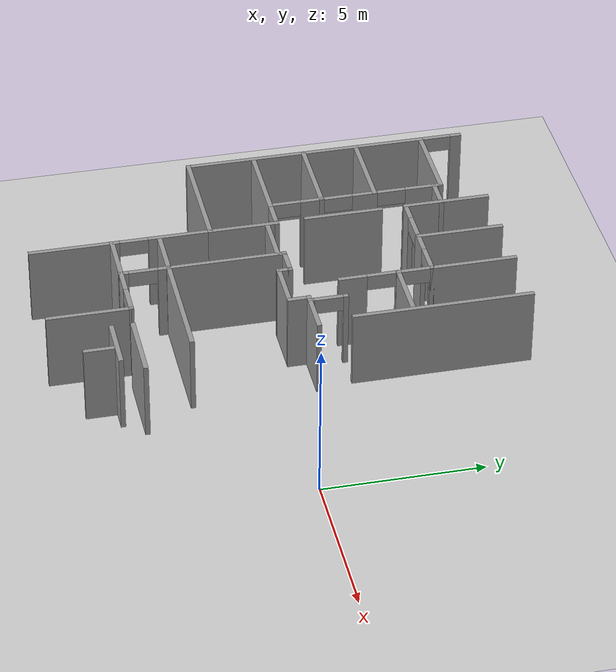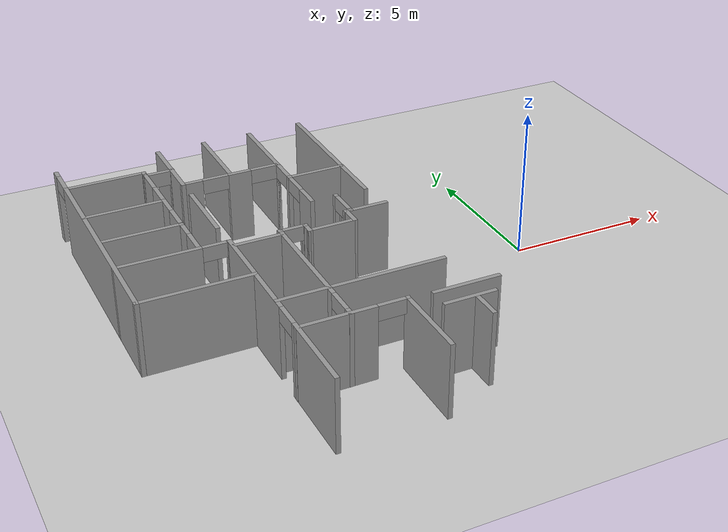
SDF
<sdf version="1.6">
 <world name="default">
  <model name="ground_plane">
   <static>1</static>
   <link name="link">
    <collision name="collision">
     <geometry><plane><normal>0 0 1</normal><size>100 100</size></plane></geometry>
     <surface><friction><ode><mu>100</mu><mu2>50</mu2></ode></friction></surface>
    </collision>
    <visual name="visual">
     <cast_shadows>0</cast_shadows>
     <geometry><plane><normal>0 0 1</normal><size>100 100</size></plane></geometry>
     <material>
      <script><uri>file://media/materials/scripts/gazebo.material</uri><name>Gazebo/Grey</name></script>
     </material>
    </visual>
   </link>
  </model>
  <model name="deh_f1">
   <pose>0.520969 0.357811 0 0 -0 0</pose>
   <link name="Wall_101">
    <collision name="Wall_101_Collision">
     <geometry><box><size>5.6204 0.15 2.5</size></box></geometry>
     <pose>0 0 1.25 0 -0 0</pose>
    </collision>
    <visual name="Wall_101_Visual">
     <pose>0 0 1.25 0 -0 0</pose>
     <geometry><box><size>5.6204 0.15 2.5</size></box></geometry>
     <material>
      <script><uri>file://media/materials/scripts/gazebo.material</uri><name>Gazebo/Grey</name></script>
      <ambient>1 1 1 1</ambient>
     </material>
    </visual>
    <pose>-5.26917 4.49123 0 0 -0 1.57128</pose>
   </link>
   <link name="Wall_103">
    <collision name="Wall_103_Collision">
     <geometry><box><size>2 0.15 2.5</size></box></geometry>
     <pose>0 0 1.25 0 -0 0</pose>
    </collision>
    <visual name="Wall_103_Visual">
     <pose>0 0 1.25 0 -0 0</pose>
     <geometry><box><size>2 0.15 2.5</size></box></geometry>
     <material>
      <script><uri>file://media/materials/scripts/gazebo.material</uri><name>Gazebo/Grey</name></script>
      <ambient>1 1 1 1</ambient>
     </material>
    </visual>
    <pose>-6.238 3.5569 0 0 -0 0</pose>
   </link>
   <link name="Wall_105">
    <pose>-10.9717 5.7489 0 0 -0 3.14159</pose>
    <visual name="Wall_105_Visual_0">
     <pose>-0.453629 0 1.25 0 -0 0</pose>
     <geometry><box><size>0.165238 0.15 2.5</size></box></geometry>
     <material>
      <script><uri>file://media/materials/scripts/gazebo.material</uri><name>Gazebo/Grey</name></script>
      <ambient>1 1 1 1</ambient>
     </material>
    </visual>
    <collision name="Wall_105_Collision_0">
     <geometry><box><size>0.165238 0.15 2.5</size></box></geometry>
     <pose>-0.453629 0 1.25 0 -0 0</pose>
    </collision>
    <visual name="Wall_105_Visual_1">
     <pose>0.457005 0 1.25 0 -0 0</pose>
     <geometry><box><size>0.158486 0.15 2.5</size></box></geometry>
     <material>
      <script><uri>file://media/materials/scripts/gazebo.material</uri><name>Gazebo/Grey</name></script>
      <ambient>1 1 1 1</ambient>
     </material>
    </visual>
    <collision name="Wall_105_Collision_1">
     <geometry><box><size>0.158486 0.15 2.5</size></box></geometry>
     <pose>0.457005 0 1.25 0 -0 0</pose>
    </collision>
    <visual name="Wall_105_Visual_2">
     <pose>0.003376 0 2.25 0 -0 0</pose>
     <geometry><box><size>0.748771 0.15 0.5</size></box></geometry>
     <material>
      <script><uri>file://media/materials/scripts/gazebo.material</uri><name>Gazebo/Grey</name></script>
      <ambient>1 1 1 1</ambient>
     </material>
    </visual>
    <collision name="Wall_105_Collision_2">
     <geometry><box><size>0.748771 0.15 0.5</size></box></geometry>
     <pose>0.003376 0 2.25 0 -0 0</pose>
    </collision>
   </link>
   <link name="Wall_19">
    <pose>-8.74893 -4.7004 0 0 -0 0.000997</pose>
    <visual name="Wall_19_Visual_0">
     <pose>-0.52084 0 1.25 0 -0 0</pose>
     <geometry><box><size>2.52103 0.15 2.5</size></box></geometry>
     <material>
      <script><uri>file://media/materials/scripts/gazebo.material</uri><name>Gazebo/Grey</name></script>
      <ambient>1 1 1 1</ambient>
     </material>
    </visual>
    <collision name="Wall_19_Collision_0">
     <geometry><box><size>2.52103 0.15 2.5</size></box></geometry>
     <pose>-0.52084 0 1.25 0 -0 0</pose>
    </collision>
    <visual name="Wall_19_Visual_1">
     <pose>1.71051 0 1.25 0 -0 0</pose>
     <geometry><box><size>0.141681 0.15 2.5</size></box></geometry>
     <material>
      <script><uri>file://media/materials/scripts/gazebo.material</uri><name>Gazebo/Grey</name></script>
      <ambient>1 1 1 1</ambient>
     </material>
    </visual>
    <collision name="Wall_19_Collision_1">
     <geometry><box><size>0.141681 0.15 2.5</size></box></geometry>
     <pose>1.71051 0 1.25 0 -0 0</pose>
    </collision>
    <visual name="Wall_19_Visual_2">
     <pose>1.18967 0 2.25 0 -0 0</pose>
     <geometry><box><size>0.9 0.15 0.5</size></box></geometry>
     <material>
      <script><uri>file://media/materials/scripts/gazebo.material</uri><name>Gazebo/Grey</name></script>
      <ambient>1 1 1 1</ambient>
     </material>
    </visual>
    <collision name="Wall_19_Collision_2">
     <geometry><box><size>0.9 0.15 0.5</size></box></geometry>
     <pose>1.18967 0 2.25 0 -0 0</pose>
    </collision>
   </link>
   <link name="Wall_2">
    <pose>-10.452 -4.42647 0 0 -0 1.5708</pose>
    <visual name="Wall_2_Visual_0">
     <pose>-1.46188 0 1.25 0 -0 0</pose>
     <geometry><box><size>2.82623 0.15 2.5</size></box></geometry>
     <material>
      <script><uri>file://media/materials/scripts/gazebo.material</uri><name>Gazebo/Grey</name></script>
      <ambient>1 1 1 1</ambient>
     </material>
    </visual>
    <collision name="Wall_2_Collision_0">
     <geometry><box><size>2.82623 0.15 2.5</size></box></geometry>
     <pose>-1.46188 0 1.25 0 -0 0</pose>
    </collision>
    <visual name="Wall_2_Visual_1">
     <pose>1.86312 0 1.25 0 -0 0</pose>
     <geometry><box><size>2.02377 0.15 2.5</size></box></geometry>
     <material>
      <script><uri>file://media/materials/scripts/gazebo.material</uri><name>Gazebo/Grey</name></script>
      <ambient>1 1 1 1</ambient>
     </material>
    </visual>
    <collision name="Wall_2_Collision_1">
     <geometry><box><size>2.02377 0.15 2.5</size></box></geometry>
     <pose>1.86312 0 1.25 0 -0 0</pose>
    </collision>
    <visual name="Wall_2_Visual_2">
     <pose>0.401232 0 2.25 0 -0 0</pose>
     <geometry><box><size>0.9 0.15 0.5</size></box></geometry>
     <material>
      <script><uri>file://media/materials/scripts/gazebo.material</uri><name>Gazebo/Grey</name></script>
      <ambient>1 1 1 1</ambient>
     </material>
    </visual>
    <collision name="Wall_2_Collision_2">
     <geometry><box><size>0.9 0.15 0.5</size></box></geometry>
     <pose>0.401232 0 2.25 0 -0 0</pose>
    </collision>
   </link>
   <link name="Wall_20">
    <collision name="Wall_20_Collision">
     <geometry><box><size>2.6716 0.15 2.5</size></box></geometry>
     <pose>0 0 1.25 0 -0 0</pose>
    </collision>
    <visual name="Wall_20_Visual">
     <pose>0 0 1.25 0 -0 0</pose>
     <geometry><box><size>2.6716 0.15 2.5</size></box></geometry>
     <material>
      <script><uri>file://media/materials/scripts/gazebo.material</uri><name>Gazebo/Grey</name></script>
      <ambient>1 1 1 1</ambient>
     </material>
    </visual>
    <pose>-7.04302 -5.9595 0 0 0 -1.57115</pose>
   </link>
   <link name="Wall_22">
    <collision name="Wall_22_Collision">
     <geometry><box><size>5.5 0.15 2.5</size></box></geometry>
     <pose>0 0 1.25 0 -0 0</pose>
    </collision>
    <visual name="Wall_22_Visual">
     <pose>0 0 1.25 0 -0 0</pose>
     <geometry><box><size>5.5 0.15 2.5</size></box></geometry>
     <material>
      <script><uri>file://media/materials/scripts/gazebo.material</uri><name>Gazebo/Grey</name></script>
      <ambient>1 1 1 1</ambient>
     </material>
    </visual>
    <pose>-7.76729 -3.22957 0 0 -0 0</pose>
   </link>
   <link name="Wall_26">
    <pose>-8.83797 -3.96974 0 0 -0 1.5708</pose>
    <visual name="Wall_26_Visual_0">
     <pose>-0.6575 0 1.25 0 -0 0</pose>
     <geometry><box><size>0.305 0.15 2.5</size></box></geometry>
     <material>
      <script><uri>file://media/materials/scripts/gazebo.material</uri><name>Gazebo/Grey</name></script>
      <ambient>1 1 1 1</ambient>
     </material>
    </visual>
    <collision name="Wall_26_Collision_0">
     <geometry><box><size>0.305 0.15 2.5</size></box></geometry>
     <pose>-0.6575 0 1.25 0 -0 0</pose>
    </collision>
    <visual name="Wall_26_Visual_1">
     <pose>0.6025 0 1.25 0 -0 0</pose>
     <geometry><box><size>0.415 0.15 2.5</size></box></geometry>
     <material>
      <script><uri>file://media/materials/scripts/gazebo.material</uri><name>Gazebo/Grey</name></script>
      <ambient>1 1 1 1</ambient>
     </material>
    </visual>
    <collision name="Wall_26_Collision_1">
     <geometry><box><size>0.415 0.15 2.5</size></box></geometry>
     <pose>0.6025 0 1.25 0 -0 0</pose>
    </collision>
    <visual name="Wall_26_Visual_2">
     <pose>-0.055 0 2.25 0 -0 0</pose>
     <geometry><box><size>0.9 0.15 0.5</size></box></geometry>
     <material>
      <script><uri>file://media/materials/scripts/gazebo.material</uri><name>Gazebo/Grey</name></script>
      <ambient>1 1 1 1</ambient>
     </material>
    </visual>
    <collision name="Wall_26_Collision_2">
     <geometry><box><size>0.9 0.15 0.5</size></box></geometry>
     <pose>-0.055 0 2.25 0 -0 0</pose>
    </collision>
   </link>
   <link name="Wall_28">
    <collision name="Wall_28_Collision">
     <geometry><box><size>2.25 0.15 2.5</size></box></geometry>
     <pose>0 0 1.25 0 -0 0</pose>
    </collision>
    <visual name="Wall_28_Visual">
     <pose>0 0 1.25 0 -0 0</pose>
     <geometry><box><size>2.25 0.15 2.5</size></box></geometry>
     <material>
      <script><uri>file://media/materials/scripts/gazebo.material</uri><name>Gazebo/Grey</name></script>
      <ambient>1 1 1 1</ambient>
     </material>
    </visual>
    <pose>-5.18797 -4.78474 0 0 -0 0</pose>
   </link>
   <link name="Wall_3">
    <collision name="Wall_3_Collision">
     <geometry><box><size>3.75 0.15 2.5</size></box></geometry>
     <pose>0 0 1.25 0 -0 0</pose>
    </collision>
    <visual name="Wall_3_Visual">
     <pose>0 0 1.25 0 -0 0</pose>
     <geometry><box><size>3.75 0.15 2.5</size></box></geometry>
     <material>
      <script><uri>file://media/materials/scripts/gazebo.material</uri><name>Gazebo/Grey</name></script>
      <ambient>1 1 1 1</ambient>
     </material>
    </visual>
    <pose>-12.252 -1.62647 0 0 -0 3.14159</pose>
   </link>
   <link name="Wall_34">
    <collision name="Wall_34_Collision">
     <geometry><box><size>1.75 0.15 2.5</size></box></geometry>
     <pose>0 0 1.25 0 -0 0</pose>
    </collision>
    <visual name="Wall_34_Visual">
     <pose>0 0 1.25 0 -0 0</pose>
     <geometry><box><size>1.75 0.15 2.5</size></box></geometry>
     <material>
      <script><uri>file://media/materials/scripts/gazebo.material</uri><name>Gazebo/Grey</name></script>
      <ambient>1 1 1 1</ambient>
     </material>
    </visual>
    <pose>-5.43797 -5.43474 0 0 -0 3.14159</pose>
   </link>
   <link name="Wall_37">
    <collision name="Wall_37_Collision">
     <geometry><box><size>1 0.15 2.5</size></box></geometry>
     <pose>0 0 1.25 0 -0 0</pose>
    </collision>
    <visual name="Wall_37_Visual">
     <pose>0 0 1.25 0 -0 0</pose>
     <geometry><box><size>1 0.15 2.5</size></box></geometry>
     <material>
      <script><uri>file://media/materials/scripts/gazebo.material</uri><name>Gazebo/Grey</name></script>
      <ambient>1 1 1 1</ambient>
     </material>
    </visual>
    <pose>-5.23797 -5.95974 0 0 -0 1.5708</pose>
   </link>
   <link name="Wall_4">
    <pose>-14.052 2.79853 0 0 -0 1.5708</pose>
    <visual name="Wall_4_Visual_0">
     <pose>-0.630476 0 1.25 0 -0 0</pose>
     <geometry><box><size>7.73905 0.15 2.5</size></box></geometry>
     <material>
      <script><uri>file://media/materials/scripts/gazebo.material</uri><name>Gazebo/Grey</name></script>
      <ambient>1 1 1 1</ambient>
     </material>
    </visual>
    <collision name="Wall_4_Collision_0">
     <geometry><box><size>7.73905 0.15 2.5</size></box></geometry>
     <pose>-0.630476 0 1.25 0 -0 0</pose>
    </collision>
    <visual name="Wall_4_Visual_1">
     <pose>4.31952 0 1.25 0 -0 0</pose>
     <geometry><box><size>0.360951 0.15 2.5</size></box></geometry>
     <material>
      <script><uri>file://media/materials/scripts/gazebo.material</uri><name>Gazebo/Grey</name></script>
      <ambient>1 1 1 1</ambient>
     </material>
    </visual>
    <collision name="Wall_4_Collision_1">
     <geometry><box><size>0.360951 0.15 2.5</size></box></geometry>
     <pose>4.31952 0 1.25 0 -0 0</pose>
    </collision>
    <visual name="Wall_4_Visual_2">
     <pose>3.68905 0 2.25 0 -0 0</pose>
     <geometry><box><size>0.9 0.15 0.5</size></box></geometry>
     <material>
      <script><uri>file://media/materials/scripts/gazebo.material</uri><name>Gazebo/Grey</name></script>
      <ambient>1 1 1 1</ambient>
     </material>
    </visual>
    <collision name="Wall_4_Collision_2">
     <geometry><box><size>0.9 0.15 0.5</size></box></geometry>
     <pose>3.68905 0 2.25 0 -0 0</pose>
    </collision>
   </link>
   <link name="Wall_40">
    <collision name="Wall_40_Collision">
     <geometry><box><size>1.53968 0.15 2.5</size></box></geometry>
     <pose>0 0 1.25 0 -0 0</pose>
    </collision>
    <visual name="Wall_40_Visual">
     <pose>0 0 1.25 0 -0 0</pose>
     <geometry><box><size>1.53968 0.15 2.5</size></box></geometry>
     <material>
      <script><uri>file://media/materials/scripts/gazebo.material</uri><name>Gazebo/Grey</name></script>
      <ambient>1 1 1 1</ambient>
     </material>
    </visual>
    <pose>-5.78712 0.618344 0 0 0 -3.1386</pose>
   </link>
   <link name="Wall_44">
    <collision name="Wall_44_Collision">
     <geometry><box><size>3.75 0.15 2.5</size></box></geometry>
     <pose>0 0 1.25 0 -0 0</pose>
    </collision>
    <visual name="Wall_44_Visual">
     <pose>0 0 1.25 0 -0 0</pose>
     <geometry><box><size>3.75 0.15 2.5</size></box></geometry>
     <material>
      <script><uri>file://media/materials/scripts/gazebo.material</uri><name>Gazebo/Grey</name></script>
      <ambient>1 1 1 1</ambient>
     </material>
    </visual>
    <pose>-8.83797 -1.43474 0 0 -0 1.5708</pose>
   </link>
   <link name="Wall_46">
    <collision name="Wall_46_Collision">
     <geometry><box><size>2.25 0.15 2.5</size></box></geometry>
     <pose>0 0 1.25 0 -0 0</pose>
    </collision>
    <visual name="Wall_46_Visual">
     <pose>0 0 1.25 0 -0 0</pose>
     <geometry><box><size>2.25 0.15 2.5</size></box></geometry>
     <material>
      <script><uri>file://media/materials/scripts/gazebo.material</uri><name>Gazebo/Grey</name></script>
      <ambient>1 1 1 1</ambient>
     </material>
    </visual>
    <pose>-10.452 -0.576473 0 0 -0 1.5708</pose>
   </link>
   <link name="Wall_48">
    <collision name="Wall_48_Collision">
     <geometry><box><size>1.73003 0.15 2.5</size></box></geometry>
     <pose>0 0 1.25 0 -0 0</pose>
    </collision>
    <visual name="Wall_48_Visual">
     <pose>0 0 1.25 0 -0 0</pose>
     <geometry><box><size>1.73003 0.15 2.5</size></box></geometry>
     <material>
      <script><uri>file://media/materials/scripts/gazebo.material</uri><name>Gazebo/Grey</name></script>
      <ambient>1 1 1 1</ambient>
     </material>
    </visual>
    <pose>-9.63041 0.166163 0 0 -0 0</pose>
   </link>
   <link name="Wall_60">
    <pose>-8.42135 0.36771 0 0 -0 0</pose>
    <visual name="Wall_60_Visual_0">
     <pose>-0.418626 0 1.25 0 -0 0</pose>
     <geometry><box><size>0.162748 0.15 2.5</size></box></geometry>
     <material>
      <script><uri>file://media/materials/scripts/gazebo.material</uri><name>Gazebo/Grey</name></script>
      <ambient>1 1 1 1</ambient>
     </material>
    </visual>
    <collision name="Wall_60_Collision_0">
     <geometry><box><size>0.162748 0.15 2.5</size></box></geometry>
     <pose>-0.418626 0 1.25 0 -0 0</pose>
    </collision>
    <visual name="Wall_60_Visual_1">
     <pose>0.421733 0 1.25 0 -0 0</pose>
     <geometry><box><size>0.156534 0.15 2.5</size></box></geometry>
     <material>
      <script><uri>file://media/materials/scripts/gazebo.material</uri><name>Gazebo/Grey</name></script>
      <ambient>1 1 1 1</ambient>
     </material>
    </visual>
    <collision name="Wall_60_Collision_1">
     <geometry><box><size>0.156534 0.15 2.5</size></box></geometry>
     <pose>0.421733 0 1.25 0 -0 0</pose>
    </collision>
    <visual name="Wall_60_Visual_2">
     <pose>0.003107 0 2.25 0 -0 0</pose>
     <geometry><box><size>0.680718 0.15 0.5</size></box></geometry>
     <material>
      <script><uri>file://media/materials/scripts/gazebo.material</uri><name>Gazebo/Grey</name></script>
      <ambient>1 1 1 1</ambient>
     </material>
    </visual>
    <collision name="Wall_60_Collision_2">
     <geometry><box><size>0.680718 0.15 0.5</size></box></geometry>
     <pose>0.003107 0 2.25 0 -0 0</pose>
    </collision>
   </link>
   <link name="Wall_62">
    <collision name="Wall_62_Collision">
     <geometry><box><size>0.5 0.15 2.5</size></box></geometry>
     <pose>0 0 1.25 0 -0 0</pose>
    </collision>
    <visual name="Wall_62_Visual">
     <pose>0 0 1.25 0 -0 0</pose>
     <geometry><box><size>0.5 0.15 2.5</size></box></geometry>
     <material>
      <script><uri>file://media/materials/scripts/gazebo.material</uri><name>Gazebo/Grey</name></script>
      <ambient>1 1 1 1</ambient>
     </material>
    </visual>
    <pose>-7.99635 0.19271 0 0 0 -1.5708</pose>
   </link>
   <link name="Wall_64">
    <collision name="Wall_64_Collision">
     <geometry><box><size>0.745834 0.15 2.5</size></box></geometry>
     <pose>0 0 1.25 0 -0 0</pose>
    </collision>
    <visual name="Wall_64_Visual">
     <pose>0 0 1.25 0 -0 0</pose>
     <geometry><box><size>0.745834 0.15 2.5</size></box></geometry>
     <material>
      <script><uri>file://media/materials/scripts/gazebo.material</uri><name>Gazebo/Grey</name></script>
      <ambient>1 1 1 1</ambient>
     </material>
    </visual>
    <pose>-6.46874 0.318344 0 0 0 -1.5708</pose>
   </link>
   <link name="Wall_65">
    <collision name="Wall_65_Collision">
     <geometry><box><size>1.66439 0.15 2.5</size></box></geometry>
     <pose>0 0 1.25 0 -0 0</pose>
    </collision>
    <visual name="Wall_65_Visual">
     <pose>0 0 1.25 0 -0 0</pose>
     <geometry><box><size>1.66439 0.15 2.5</size></box></geometry>
     <material>
      <script><uri>file://media/materials/scripts/gazebo.material</uri><name>Gazebo/Grey</name></script>
      <ambient>1 1 1 1</ambient>
     </material>
    </visual>
    <pose>-7.23916 0.019069 0 0 0 -3.1398</pose>
   </link>
   <link name="Wall_67">
    <pose>-12.252 0.473528 0 0 -0 3.14159</pose>
    <visual name="Wall_67_Visual_0">
     <pose>-1.787 0 1.25 0 -0 0</pose>
     <geometry><box><size>0.176003 0.15 2.5</size></box></geometry>
     <material>
      <script><uri>file://media/materials/scripts/gazebo.material</uri><name>Gazebo/Grey</name></script>
      <ambient>1 1 1 1</ambient>
     </material>
    </visual>
    <collision name="Wall_67_Collision_0">
     <geometry><box><size>0.176003 0.15 2.5</size></box></geometry>
     <pose>-1.787 0 1.25 0 -0 0</pose>
    </collision>
    <visual name="Wall_67_Visual_1">
     <pose>0.483001 0 1.25 0 -0 0</pose>
     <geometry><box><size>2.784 0.15 2.5</size></box></geometry>
     <material>
      <script><uri>file://media/materials/scripts/gazebo.material</uri><name>Gazebo/Grey</name></script>
      <ambient>1 1 1 1</ambient>
     </material>
    </visual>
    <collision name="Wall_67_Collision_1">
     <geometry><box><size>2.784 0.15 2.5</size></box></geometry>
     <pose>0.483001 0 1.25 0 -0 0</pose>
    </collision>
    <visual name="Wall_67_Visual_2">
     <pose>-1.304 0 2.25 0 -0 0</pose>
     <geometry><box><size>0.79 0.15 0.5</size></box></geometry>
     <material>
      <script><uri>file://media/materials/scripts/gazebo.material</uri><name>Gazebo/Grey</name></script>
      <ambient>1 1 1 1</ambient>
     </material>
    </visual>
    <collision name="Wall_67_Collision_2">
     <geometry><box><size>0.79 0.15 0.5</size></box></geometry>
     <pose>-1.304 0 2.25 0 -0 0</pose>
    </collision>
   </link>
   <link name="Wall_69">
    <collision name="Wall_69_Collision">
     <geometry><box><size>2.75 0.15 2.5</size></box></geometry>
     <pose>0 0 1.25 0 -0 0</pose>
    </collision>
    <visual name="Wall_69_Visual">
     <pose>0 0 1.25 0 -0 0</pose>
     <geometry><box><size>2.75 0.15 2.5</size></box></geometry>
     <material>
      <script><uri>file://media/materials/scripts/gazebo.material</uri><name>Gazebo/Grey</name></script>
      <ambient>1 1 1 1</ambient>
     </material>
    </visual>
    <pose>-12.728 2.11286 0 0 -0 0</pose>
   </link>
   <link name="Wall_70">
    <pose>-11.428 1.31286 0 0 0 -1.5708</pose>
    <visual name="Wall_70_Visual_0">
     <pose>-0.502199 0 1.25 0 -0 0</pose>
     <geometry><box><size>0.745601 0.15 2.5</size></box></geometry>
     <material>
      <script><uri>file://media/materials/scripts/gazebo.material</uri><name>Gazebo/Grey</name></script>
      <ambient>1 1 1 1</ambient>
     </material>
    </visual>
    <collision name="Wall_70_Collision_0">
     <geometry><box><size>0.745601 0.15 2.5</size></box></geometry>
     <pose>-0.502199 0 1.25 0 -0 0</pose>
    </collision>
    <visual name="Wall_70_Visual_1">
     <pose>0.822801 0 1.25 0 -0 0</pose>
     <geometry><box><size>0.104399 0.15 2.5</size></box></geometry>
     <material>
      <script><uri>file://media/materials/scripts/gazebo.material</uri><name>Gazebo/Grey</name></script>
      <ambient>1 1 1 1</ambient>
     </material>
    </visual>
    <collision name="Wall_70_Collision_1">
     <geometry><box><size>0.104399 0.15 2.5</size></box></geometry>
     <pose>0.822801 0 1.25 0 -0 0</pose>
    </collision>
    <visual name="Wall_70_Visual_2">
     <pose>0.320601 0 2.25 0 -0 0</pose>
     <geometry><box><size>0.9 0.15 0.5</size></box></geometry>
     <material>
      <script><uri>file://media/materials/scripts/gazebo.material</uri><name>Gazebo/Grey</name></script>
      <ambient>1 1 1 1</ambient>
     </material>
    </visual>
    <collision name="Wall_70_Collision_2">
     <geometry><box><size>0.9 0.15 0.5</size></box></geometry>
     <pose>0.320601 0 2.25 0 -0 0</pose>
    </collision>
   </link>
   <link name="Wall_75">
    <collision name="Wall_75_Collision">
     <geometry><box><size>2.5 0.15 2.5</size></box></geometry>
     <pose>0 0 1.25 0 -0 0</pose>
    </collision>
    <visual name="Wall_75_Visual">
     <pose>0 0 1.25 0 -0 0</pose>
     <geometry><box><size>2.5 0.15 2.5</size></box></geometry>
     <material>
      <script><uri>file://media/materials/scripts/gazebo.material</uri><name>Gazebo/Grey</name></script>
      <ambient>1 1 1 1</ambient>
     </material>
    </visual>
    <pose>-10.5068 2.60474 0 0 0 -1.5708</pose>
   </link>
   <link name="Wall_77">
    <pose>-11.428 4.03786 0 0 -0 1.5708</pose>
    <visual name="Wall_77_Visual_0">
     <pose>-1.91892 0 1.25 0 -0 0</pose>
     <geometry><box><size>0.162152 0.15 2.5</size></box></geometry>
     <material>
      <script><uri>file://media/materials/scripts/gazebo.material</uri><name>Gazebo/Grey</name></script>
      <ambient>1 1 1 1</ambient>
     </material>
    </visual>
    <collision name="Wall_77_Collision_0">
     <geometry><box><size>0.162152 0.15 2.5</size></box></geometry>
     <pose>-1.91892 0 1.25 0 -0 0</pose>
    </collision>
    <visual name="Wall_77_Visual_1">
     <pose>-0.535139 0 1.25 0 -0 0</pose>
     <geometry><box><size>0.805417 0.15 2.5</size></box></geometry>
     <material>
      <script><uri>file://media/materials/scripts/gazebo.material</uri><name>Gazebo/Grey</name></script>
      <ambient>1 1 1 1</ambient>
     </material>
    </visual>
    <collision name="Wall_77_Collision_1">
     <geometry><box><size>0.805417 0.15 2.5</size></box></geometry>
     <pose>-0.535139 0 1.25 0 -0 0</pose>
    </collision>
    <visual name="Wall_77_Visual_2">
     <pose>1.38379 0 1.25 0 -0 0</pose>
     <geometry><box><size>1.23243 0.15 2.5</size></box></geometry>
     <material>
      <script><uri>file://media/materials/scripts/gazebo.material</uri><name>Gazebo/Grey</name></script>
      <ambient>1 1 1 1</ambient>
     </material>
    </visual>
    <collision name="Wall_77_Collision_2">
     <geometry><box><size>1.23243 0.15 2.5</size></box></geometry>
     <pose>1.38379 0 1.25 0 -0 0</pose>
    </collision>
    <visual name="Wall_77_Visual_3">
     <pose>-1.38785 0 2.25 0 -0 0</pose>
     <geometry><box><size>0.9 0.15 0.5</size></box></geometry>
     <material>
      <script><uri>file://media/materials/scripts/gazebo.material</uri><name>Gazebo/Grey</name></script>
      <ambient>1 1 1 1</ambient>
     </material>
    </visual>
    <collision name="Wall_77_Collision_3">
     <geometry><box><size>0.9 0.15 0.5</size></box></geometry>
     <pose>-1.38785 0 2.25 0 -0 0</pose>
    </collision>
    <visual name="Wall_77_Visual_4">
     <pose>0.317569 0 2.25 0 -0 0</pose>
     <geometry><box><size>0.9 0.15 0.5</size></box></geometry>
     <material>
      <script><uri>file://media/materials/scripts/gazebo.material</uri><name>Gazebo/Grey</name></script>
      <ambient>1 1 1 1</ambient>
     </material>
    </visual>
    <collision name="Wall_77_Collision_4">
     <geometry><box><size>0.9 0.15 0.5</size></box></geometry>
     <pose>0.317569 0 2.25 0 -0 0</pose>
    </collision>
   </link>
   <link name="Wall_78">
    <collision name="Wall_78_Collision">
     <geometry><box><size>2.75 0.15 2.5</size></box></geometry>
     <pose>0 0 1.25 0 -0 0</pose>
    </collision>
    <visual name="Wall_78_Visual">
     <pose>0 0 1.25 0 -0 0</pose>
     <geometry><box><size>2.75 0.15 2.5</size></box></geometry>
     <material>
      <script><uri>file://media/materials/scripts/gazebo.material</uri><name>Gazebo/Grey</name></script>
      <ambient>1 1 1 1</ambient>
     </material>
    </visual>
    <pose>-12.728 5.96286 0 0 -0 3.14159</pose>
   </link>
   <link name="Wall_80">
    <collision name="Wall_80_Collision">
     <geometry><box><size>2.75 0.15 2.5</size></box></geometry>
     <pose>0 0 1.25 0 -0 0</pose>
    </collision>
    <visual name="Wall_80_Visual">
     <pose>0 0 1.25 0 -0 0</pose>
     <geometry><box><size>2.75 0.15 2.5</size></box></geometry>
     <material>
      <script><uri>file://media/materials/scripts/gazebo.material</uri><name>Gazebo/Grey</name></script>
      <ambient>1 1 1 1</ambient>
     </material>
    </visual>
    <pose>-12.7333 3.82109 0 0 -0 0</pose>
   </link>
   <link name="Wall_82">
    <collision name="Wall_82_Collision">
     <geometry><box><size>2.75 0.15 2.5</size></box></geometry>
     <pose>0 0 1.25 0 -0 0</pose>
    </collision>
    <visual name="Wall_82_Visual">
     <pose>0 0 1.25 0 -0 0</pose>
     <geometry><box><size>2.75 0.15 2.5</size></box></geometry>
     <material>
      <script><uri>file://media/materials/scripts/gazebo.material</uri><name>Gazebo/Grey</name></script>
      <ambient>1 1 1 1</ambient>
     </material>
    </visual>
    <pose>-10.5201 5.90239 0 0 0 -1.5708</pose>
   </link>
   <link name="Wall_83">
    <pose>-8.84514 4.60239 0 0 -0 0</pose>
    <visual name="Wall_83_Visual_0">
     <pose>-1.37632 0 1.25 0 -0 0</pose>
     <geometry><box><size>0.747358 0.15 2.5</size></box></geometry>
     <material>
      <script><uri>file://media/materials/scripts/gazebo.material</uri><name>Gazebo/Grey</name></script>
      <ambient>1 1 1 1</ambient>
     </material>
    </visual>
    <collision name="Wall_83_Collision_0">
     <geometry><box><size>0.747358 0.15 2.5</size></box></geometry>
     <pose>-1.37632 0 1.25 0 -0 0</pose>
    </collision>
    <visual name="Wall_83_Visual_1">
     <pose>0.299532 0 1.25 0 -0 0</pose>
     <geometry><box><size>0.804349 0.15 2.5</size></box></geometry>
     <material>
      <script><uri>file://media/materials/scripts/gazebo.material</uri><name>Gazebo/Grey</name></script>
      <ambient>1 1 1 1</ambient>
     </material>
    </visual>
    <collision name="Wall_83_Collision_1">
     <geometry><box><size>0.804349 0.15 2.5</size></box></geometry>
     <pose>0.299532 0 1.25 0 -0 0</pose>
    </collision>
    <visual name="Wall_83_Visual_2">
     <pose>1.67585 0 1.25 0 -0 0</pose>
     <geometry><box><size>0.148293 0.15 2.5</size></box></geometry>
     <material>
      <script><uri>file://media/materials/scripts/gazebo.material</uri><name>Gazebo/Grey</name></script>
      <ambient>1 1 1 1</ambient>
     </material>
    </visual>
    <collision name="Wall_83_Collision_2">
     <geometry><box><size>0.148293 0.15 2.5</size></box></geometry>
     <pose>1.67585 0 1.25 0 -0 0</pose>
    </collision>
    <visual name="Wall_83_Visual_3">
     <pose>-0.552642 0 2.25 0 -0 0</pose>
     <geometry><box><size>0.9 0.15 0.5</size></box></geometry>
     <material>
      <script><uri>file://media/materials/scripts/gazebo.material</uri><name>Gazebo/Grey</name></script>
      <ambient>1 1 1 1</ambient>
     </material>
    </visual>
    <collision name="Wall_83_Collision_3">
     <geometry><box><size>0.9 0.15 0.5</size></box></geometry>
     <pose>-0.552642 0 2.25 0 -0 0</pose>
    </collision>
    <visual name="Wall_83_Visual_4">
     <pose>1.15171 0 2.25 0 -0 0</pose>
     <geometry><box><size>0.9 0.15 0.5</size></box></geometry>
     <material>
      <script><uri>file://media/materials/scripts/gazebo.material</uri><name>Gazebo/Grey</name></script>
      <ambient>1 1 1 1</ambient>
     </material>
    </visual>
    <collision name="Wall_83_Collision_4">
     <geometry><box><size>0.9 0.15 0.5</size></box></geometry>
     <pose>1.15171 0 2.25 0 -0 0</pose>
    </collision>
   </link>
   <link name="Wall_84">
    <pose>-7.17014 3.17739 0 0 0 -1.5708</pose>
    <visual name="Wall_84_Visual_0">
     <pose>-1.43432 0 1.25 0 -0 0</pose>
     <geometry><box><size>0.131355 0.15 2.5</size></box></geometry>
     <material>
      <script><uri>file://media/materials/scripts/gazebo.material</uri><name>Gazebo/Grey</name></script>
      <ambient>1 1 1 1</ambient>
     </material>
    </visual>
    <collision name="Wall_84_Collision_0">
     <geometry><box><size>0.131355 0.15 2.5</size></box></geometry>
     <pose>-1.43432 0 1.25 0 -0 0</pose>
    </collision>
    <visual name="Wall_84_Visual_1">
     <pose>-0.383863 0 1.25 0 -0 0</pose>
     <geometry><box><size>0.169565 0.15 2.5</size></box></geometry>
     <material>
      <script><uri>file://media/materials/scripts/gazebo.material</uri><name>Gazebo/Grey</name></script>
      <ambient>1 1 1 1</ambient>
     </material>
    </visual>
    <collision name="Wall_84_Collision_1">
     <geometry><box><size>0.169565 0.15 2.5</size></box></geometry>
     <pose>-0.383863 0 1.25 0 -0 0</pose>
    </collision>
    <visual name="Wall_84_Visual_2">
     <pose>1.05046 0 1.25 0 -0 0</pose>
     <geometry><box><size>0.89908 0.15 2.5</size></box></geometry>
     <material>
      <script><uri>file://media/materials/scripts/gazebo.material</uri><name>Gazebo/Grey</name></script>
      <ambient>1 1 1 1</ambient>
     </material>
    </visual>
    <collision name="Wall_84_Collision_2">
     <geometry><box><size>0.89908 0.15 2.5</size></box></geometry>
     <pose>1.05046 0 1.25 0 -0 0</pose>
    </collision>
    <visual name="Wall_84_Visual_3">
     <pose>-0.918645 0 2.25 0 -0 0</pose>
     <geometry><box><size>0.9 0.15 0.5</size></box></geometry>
     <material>
      <script><uri>file://media/materials/scripts/gazebo.material</uri><name>Gazebo/Grey</name></script>
      <ambient>1 1 1 1</ambient>
     </material>
    </visual>
    <collision name="Wall_84_Collision_3">
     <geometry><box><size>0.9 0.15 0.5</size></box></geometry>
     <pose>-0.918645 0 2.25 0 -0 0</pose>
    </collision>
    <visual name="Wall_84_Visual_4">
     <pose>0.15092 0 2.25 0 -0 0</pose>
     <geometry><box><size>0.9 0.15 0.5</size></box></geometry>
     <material>
      <script><uri>file://media/materials/scripts/gazebo.material</uri><name>Gazebo/Grey</name></script>
      <ambient>1 1 1 1</ambient>
     </material>
    </visual>
    <collision name="Wall_84_Collision_4">
     <geometry><box><size>0.9 0.15 0.5</size></box></geometry>
     <pose>0.15092 0 2.25 0 -0 0</pose>
    </collision>
   </link>
   <link name="Wall_88">
    <collision name="Wall_88_Collision">
     <geometry><box><size>2.75 0.15 2.5</size></box></geometry>
     <pose>0 0 1.25 0 -0 0</pose>
    </collision>
    <visual name="Wall_88_Visual">
     <pose>0 0 1.25 0 -0 0</pose>
     <geometry><box><size>2.75 0.15 2.5</size></box></geometry>
     <material>
      <script><uri>file://media/materials/scripts/gazebo.material</uri><name>Gazebo/Grey</name></script>
      <ambient>1 1 1 1</ambient>
     </material>
    </visual>
    <pose>-8.85527 5.91517 0 0 0 -1.5708</pose>
   </link>
   <link name="Wall_92">
    <collision name="Wall_92_Collision">
     <geometry><box><size>2.75 0.15 2.5</size></box></geometry>
     <pose>0 0 1.25 0 -0 0</pose>
    </collision>
    <visual name="Wall_92_Visual">
     <pose>0 0 1.25 0 -0 0</pose>
     <geometry><box><size>2.75 0.15 2.5</size></box></geometry>
     <material>
      <script><uri>file://media/materials/scripts/gazebo.material</uri><name>Gazebo/Grey</name></script>
      <ambient>1 1 1 1</ambient>
     </material>
    </visual>
    <pose>-7.17014 5.90239 0 0 -0 1.5708</pose>
   </link>
   <link name="Wall_98">
    <pose>-6.32018 1.17313 0 0 -0 1.5708</pose>
    <visual name="Wall_98_Visual_0">
     <pose>-0.529482 0 1.25 0 -0 0</pose>
     <geometry><box><size>0.191036 0.15 2.5</size></box></geometry>
     <material>
      <script><uri>file://media/materials/scripts/gazebo.material</uri><name>Gazebo/Grey</name></script>
      <ambient>1 1 1 1</ambient>
     </material>
    </visual>
    <collision name="Wall_98_Collision_0">
     <geometry><box><size>0.191036 0.15 2.5</size></box></geometry>
     <pose>-0.529482 0 1.25 0 -0 0</pose>
    </collision>
    <visual name="Wall_98_Visual_1">
     <pose>0.545518 0 1.25 0 -0 0</pose>
     <geometry><box><size>0.158964 0.15 2.5</size></box></geometry>
     <material>
      <script><uri>file://media/materials/scripts/gazebo.material</uri><name>Gazebo/Grey</name></script>
      <ambient>1 1 1 1</ambient>
     </material>
    </visual>
    <collision name="Wall_98_Collision_1">
     <geometry><box><size>0.158964 0.15 2.5</size></box></geometry>
     <pose>0.545518 0 1.25 0 -0 0</pose>
    </collision>
    <visual name="Wall_98_Visual_2">
     <pose>0.016036 0 2.25 0 -0 0</pose>
     <geometry><box><size>0.9 0.15 0.5</size></box></geometry>
     <material>
      <script><uri>file://media/materials/scripts/gazebo.material</uri><name>Gazebo/Grey</name></script>
      <ambient>1 1 1 1</ambient>
     </material>
    </visual>
    <collision name="Wall_98_Collision_2">
     <geometry><box><size>0.9 0.15 0.5</size></box></geometry>
     <pose>0.016036 0 2.25 0 -0 0</pose>
    </collision>
   </link>
   <static>1</static>
  </model>
 </world>
</sdf>
